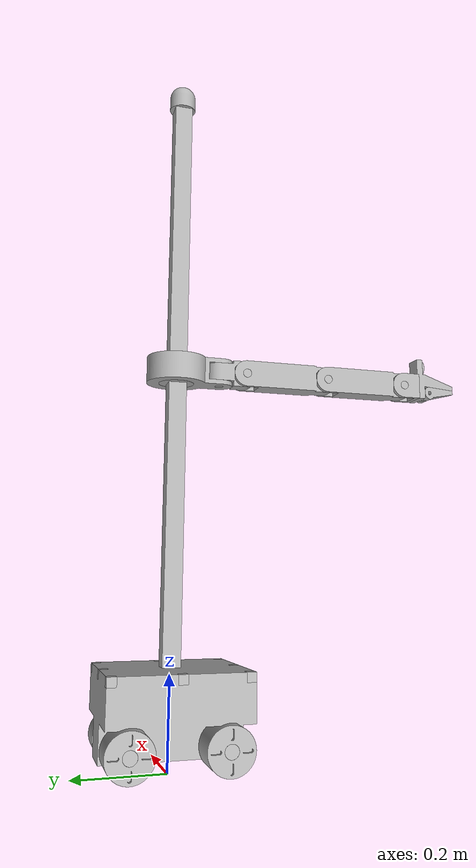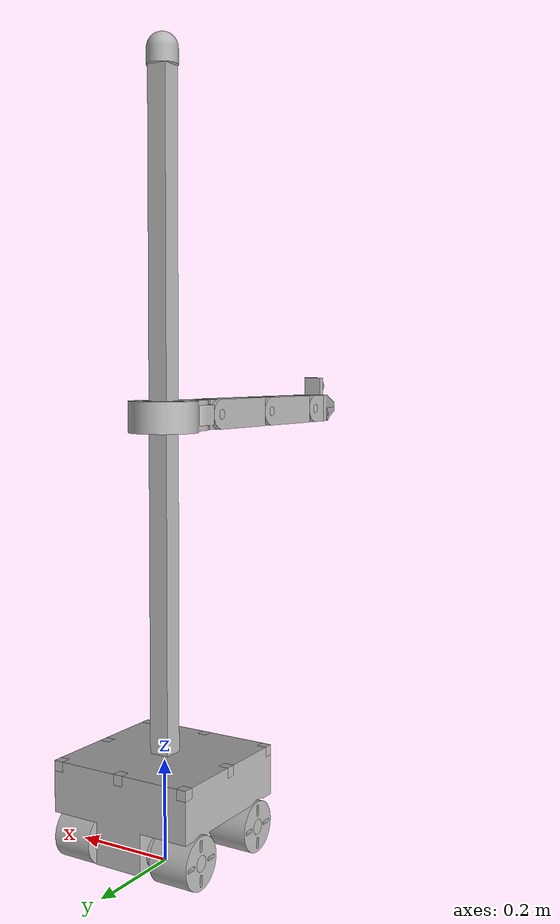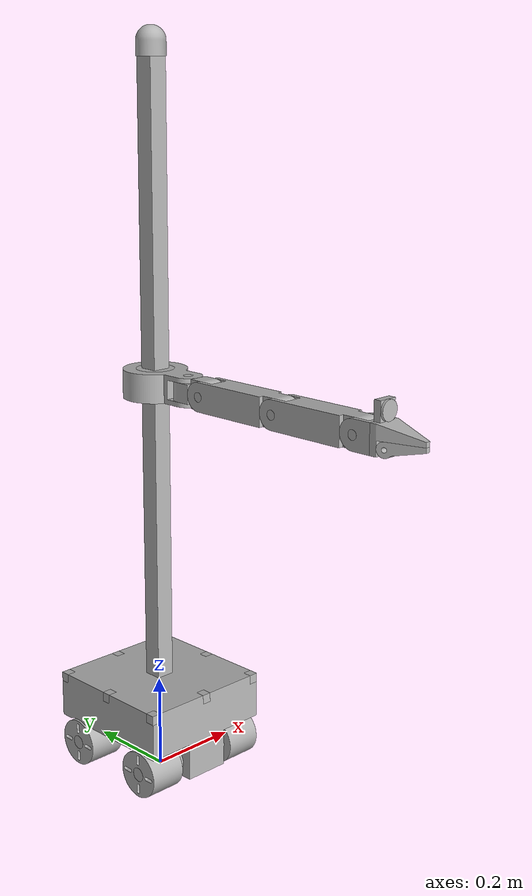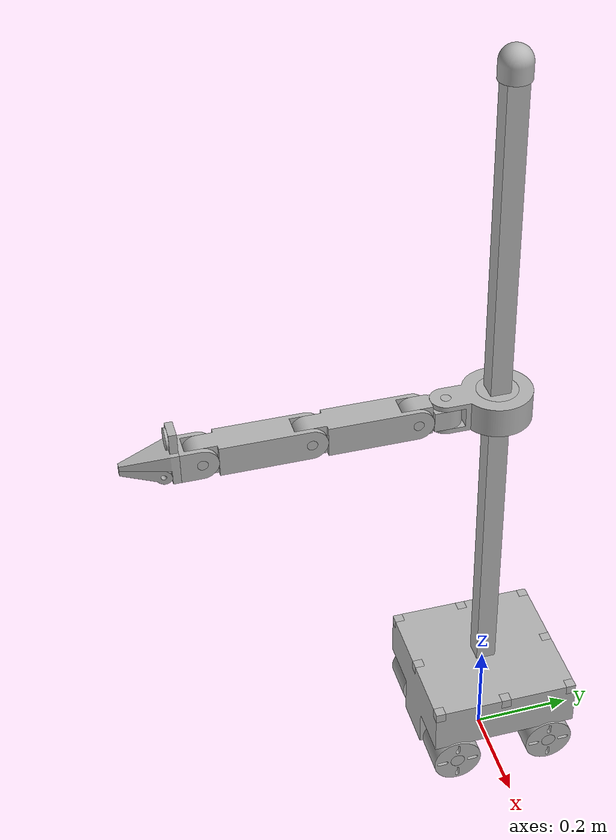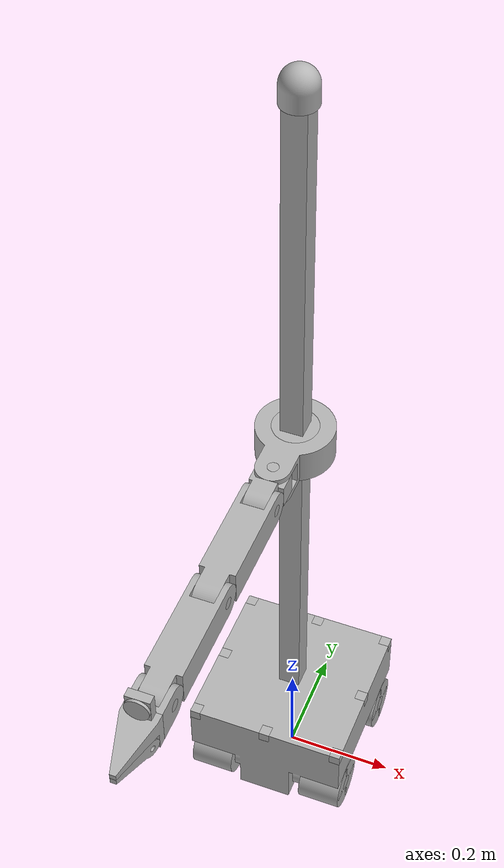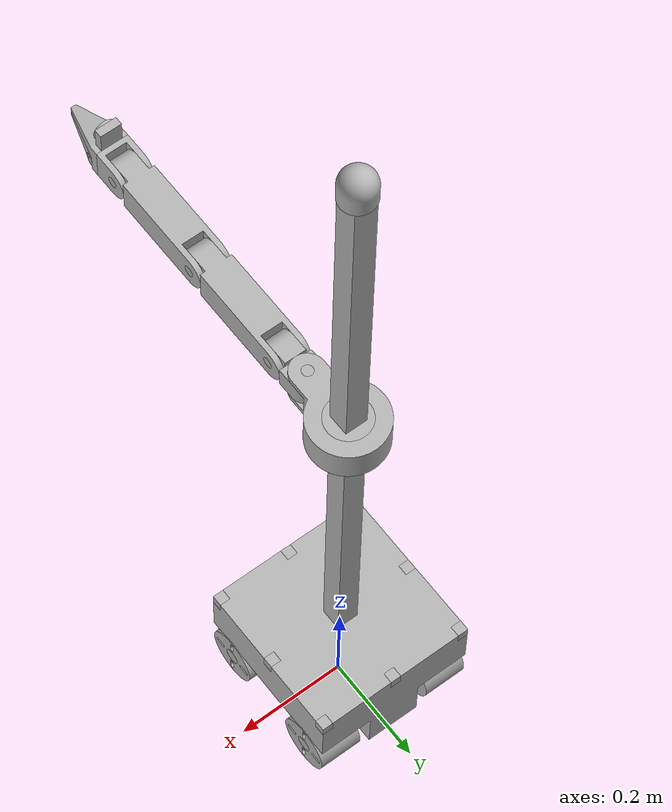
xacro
<?xml version="1.0" ?>
<robot name="robot_RAMI_v1_urdf" xmlns:xacro="http://www.ros.org/wiki/xacro">

<xacro:include filename="$(find robot_RAMI_v1_urdf_description)/urdf/materials.xacro" />
<xacro:include filename="$(find robot_RAMI_v1_urdf_description)/urdf/robot_RAMI_v1_urdf.trans" />
<xacro:include filename="$(find robot_RAMI_v1_urdf_description)/urdf/robot_RAMI_v1_urdf.gazebo" />
<link name="base_link">
  <inertial>
    <origin xyz="5.236735450237464e-45 1.6694389991095796e-16 0.14282359768738614" rpy="0 0 0"/>
    <mass value="91.99187597721883"/>
    <inertia ixx="0.904345" iyy="0.771264" izz="1.256699" ixy="0.0" iyz="-0.0" ixz="-0.0"/>
  </inertial>
  <visual>
    <origin xyz="0 0 0" rpy="0 0 0"/>
    <geometry>
      <mesh filename="file://$(find robot_RAMI_v1_urdf_description)/meshes/base_link.stl" scale="0.001 0.001 0.001"/>
    </geometry>
    <material name="silver"/>
  </visual>
  <collision>
    <origin xyz="0 0 0" rpy="0 0 0"/>
    <geometry>
      <mesh filename="file://$(find robot_RAMI_v1_urdf_description)/meshes/base_link.stl" scale="0.001 0.001 0.001"/>
    </geometry>
  </collision>
</link>

<link name="weel_left_front_1">
  <inertial>
    <origin xyz="-0.04042192720646226 -2.7755575615628914e-17 2.7755575615628914e-17" rpy="0 0 0"/>
    <mass value="4.434930062692104"/>
    <inertia ixx="0.006057" iyy="0.005355" izz="0.005355" ixy="-0.0" iyz="0.0" ixz="0.0"/>
  </inertial>
  <visual>
    <origin xyz="-0.15 0.1 -0.065" rpy="0 0 0"/>
    <geometry>
      <mesh filename="file://$(find robot_RAMI_v1_urdf_description)/meshes/weel_left_front_1.stl" scale="0.001 0.001 0.001"/>
    </geometry>
    <material name="silver"/>
  </visual>
  <collision>
    <origin xyz="-0.15 0.1 -0.065" rpy="0 0 0"/>
    <geometry>
      <mesh filename="file://$(find robot_RAMI_v1_urdf_description)/meshes/weel_left_front_1.stl" scale="0.001 0.001 0.001"/>
    </geometry>
  </collision>
</link>

<link name="weel_left_back_1">
  <inertial>
    <origin xyz="-0.04042192720646226 -4.163336342344337e-17 2.7755575615628914e-17" rpy="0 0 0"/>
    <mass value="4.434930062692104"/>
    <inertia ixx="0.006057" iyy="0.005355" izz="0.005355" ixy="0.0" iyz="0.0" ixz="0.0"/>
  </inertial>
  <visual>
    <origin xyz="-0.15 -0.1 -0.065" rpy="0 0 0"/>
    <geometry>
      <mesh filename="file://$(find robot_RAMI_v1_urdf_description)/meshes/weel_left_back_1.stl" scale="0.001 0.001 0.001"/>
    </geometry>
    <material name="silver"/>
  </visual>
  <collision>
    <origin xyz="-0.15 -0.1 -0.065" rpy="0 0 0"/>
    <geometry>
      <mesh filename="file://$(find robot_RAMI_v1_urdf_description)/meshes/weel_left_back_1.stl" scale="0.001 0.001 0.001"/>
    </geometry>
  </collision>
</link>

<link name="weel_right_front_1">
  <inertial>
    <origin xyz="0.04042192720646226 -2.7755575615628914e-17 -2.7755575615628914e-17" rpy="0 0 0"/>
    <mass value="4.434930062692104"/>
    <inertia ixx="0.006057" iyy="0.005355" izz="0.005355" ixy="0.0" iyz="-0.0" ixz="-0.0"/>
  </inertial>
  <visual>
    <origin xyz="0.15 0.1 -0.065" rpy="0 0 0"/>
    <geometry>
      <mesh filename="file://$(find robot_RAMI_v1_urdf_description)/meshes/weel_right_front_1.stl" scale="0.001 0.001 0.001"/>
    </geometry>
    <material name="silver"/>
  </visual>
  <collision>
    <origin xyz="0.15 0.1 -0.065" rpy="0 0 0"/>
    <geometry>
      <mesh filename="file://$(find robot_RAMI_v1_urdf_description)/meshes/weel_right_front_1.stl" scale="0.001 0.001 0.001"/>
    </geometry>
  </collision>
</link>

<link name="weel_right_back_1">
  <inertial>
    <origin xyz="0.04042192720646226 -4.163336342344337e-17 -2.7755575615628914e-17" rpy="0 0 0"/>
    <mass value="4.434930062692104"/>
    <inertia ixx="0.006057" iyy="0.005355" izz="0.005355" ixy="0.0" iyz="-0.0" ixz="-0.0"/>
  </inertial>
  <visual>
    <origin xyz="0.15 -0.1 -0.065" rpy="0 0 0"/>
    <geometry>
      <mesh filename="file://$(find robot_RAMI_v1_urdf_description)/meshes/weel_right_back_1.stl" scale="0.001 0.001 0.001"/>
    </geometry>
    <material name="silver"/>
  </visual>
  <collision>
    <origin xyz="0.15 -0.1 -0.065" rpy="0 0 0"/>
    <geometry>
      <mesh filename="file://$(find robot_RAMI_v1_urdf_description)/meshes/weel_right_back_1.stl" scale="0.001 0.001 0.001"/>
    </geometry>
  </collision>
</link>

<link name="pillar_link_1">
  <inertial>
    <origin xyz="0.0 0.0 0.65" rpy="0 0 0"/>
    <mass value="16.328"/>
    <inertia ixx="2.301704" iyy="2.301704" izz="0.004354" ixy="0.0" iyz="0.0" ixz="0.0"/>
  </inertial>
  <visual>
    <origin xyz="-0.0 -0.0 -0.215" rpy="0 0 0"/>
    <geometry>
      <mesh filename="file://$(find robot_RAMI_v1_urdf_description)/meshes/pillar_link_1.stl" scale="0.001 0.001 0.001"/>
    </geometry>
    <material name="silver"/>
  </visual>
  <collision>
    <origin xyz="-0.0 -0.0 -0.215" rpy="0 0 0"/>
    <geometry>
      <mesh filename="file://$(find robot_RAMI_v1_urdf_description)/meshes/pillar_link_1.stl" scale="0.001 0.001 0.001"/>
    </geometry>
  </collision>
</link>

<link name="lift_slide_link_1">
  <inertial>
    <origin xyz="0.0 0.019999999999999993 0.0" rpy="0 0 0"/>
    <mass value="1.6139042237452679"/>
    <inertia ixx="0.001331" iyy="0.001331" izz="0.001693" ixy="0.0" iyz="0.0" ixz="-0.0"/>
  </inertial>
  <visual>
    <origin xyz="-0.0 0.02 -0.865" rpy="0 0 0"/>
    <geometry>
      <mesh filename="file://$(find robot_RAMI_v1_urdf_description)/meshes/lift_slide_link_1.stl" scale="0.001 0.001 0.001"/>
    </geometry>
    <material name="silver"/>
  </visual>
  <collision>
    <origin xyz="-0.0 0.02 -0.865" rpy="0 0 0"/>
    <geometry>
      <mesh filename="file://$(find robot_RAMI_v1_urdf_description)/meshes/lift_slide_link_1.stl" scale="0.001 0.001 0.001"/>
    </geometry>
  </collision>
</link>

<link name="rotation_link_1">
  <inertial>
    <origin xyz="-3.8733921313667243e-17 -0.011034064491522291 -0.030000000000000027" rpy="0 0 0"/>
    <mass value="4.894030814575847"/>
    <inertia ixx="0.012634" iyy="0.008358" izz="0.017752" ixy="-0.0" iyz="-0.0" ixz="-0.0"/>
  </inertial>
  <visual>
    <origin xyz="-0.0 -0.0 -0.895" rpy="0 0 0"/>
    <geometry>
      <mesh filename="file://$(find robot_RAMI_v1_urdf_description)/meshes/rotation_link_1.stl" scale="0.001 0.001 0.001"/>
    </geometry>
    <material name="silver"/>
  </visual>
  <collision>
    <origin xyz="-0.0 -0.0 -0.895" rpy="0 0 0"/>
    <geometry>
      <mesh filename="file://$(find robot_RAMI_v1_urdf_description)/meshes/rotation_link_1.stl" scale="0.001 0.001 0.001"/>
    </geometry>
  </collision>
</link>

<link name="arm_link_1_1">
  <inertial>
    <origin xyz="-2.4373878592258097e-14 -0.02999999999997563 -0.030000000000000027" rpy="0 0 0"/>
    <mass value="2.116860093227199"/>
    <inertia ixx="0.002544" iyy="0.000873" izz="0.002544" ixy="0.0" iyz="-0.0" ixz="-0.0"/>
  </inertial>
  <visual>
    <origin xyz="0.0 0.1 -0.895" rpy="0 0 0"/>
    <geometry>
      <mesh filename="file://$(find robot_RAMI_v1_urdf_description)/meshes/arm_link_1_1.stl" scale="0.001 0.001 0.001"/>
    </geometry>
    <material name="silver"/>
  </visual>
  <collision>
    <origin xyz="0.0 0.1 -0.895" rpy="0 0 0"/>
    <geometry>
      <mesh filename="file://$(find robot_RAMI_v1_urdf_description)/meshes/arm_link_1_1.stl" scale="0.001 0.001 0.001"/>
    </geometry>
  </collision>
</link>

<link name="arm_link_2_1">
  <inertial>
    <origin xyz="0.029999999999991558 -0.11076897638558528 0.0" rpy="0 0 0"/>
    <mass value="5.4700605629283565"/>
    <inertia ixx="0.022112" iyy="0.003232" izz="0.022162" ixy="-0.0" iyz="0.0" ixz="0.0"/>
  </inertial>
  <visual>
    <origin xyz="0.03 0.16 -0.865" rpy="0 0 0"/>
    <geometry>
      <mesh filename="file://$(find robot_RAMI_v1_urdf_description)/meshes/arm_link_2_1.stl" scale="0.001 0.001 0.001"/>
    </geometry>
    <material name="silver"/>
  </visual>
  <collision>
    <origin xyz="0.03 0.16 -0.865" rpy="0 0 0"/>
    <geometry>
      <mesh filename="file://$(find robot_RAMI_v1_urdf_description)/meshes/arm_link_2_1.stl" scale="0.001 0.001 0.001"/>
    </geometry>
  </collision>
</link>

<link name="arm_link_3_1">
  <inertial>
    <origin xyz="0.029999999999989233 -0.11076897638558181 0.0" rpy="0 0 0"/>
    <mass value="5.4700605629283565"/>
    <inertia ixx="0.022112" iyy="0.003232" izz="0.022162" ixy="0.0" iyz="0.0" ixz="0.0"/>
  </inertial>
  <visual>
    <origin xyz="0.03 0.36 -0.865" rpy="0 0 0"/>
    <geometry>
      <mesh filename="file://$(find robot_RAMI_v1_urdf_description)/meshes/arm_link_3_1.stl" scale="0.001 0.001 0.001"/>
    </geometry>
    <material name="silver"/>
  </visual>
  <collision>
    <origin xyz="0.03 0.36 -0.865" rpy="0 0 0"/>
    <geometry>
      <mesh filename="file://$(find robot_RAMI_v1_urdf_description)/meshes/arm_link_3_1.stl" scale="0.001 0.001 0.001"/>
    </geometry>
  </collision>
</link>

<link name="arm_link_4_1">
  <inertial>
    <origin xyz="0.03000000000001029 -0.016280521371105028 -1.1102230246251565e-16" rpy="0 0 0"/>
    <mass value="0.7624920186454387"/>
    <inertia ixx="0.000549" iyy="0.000593" izz="0.000704" ixy="-0.0" iyz="0.0" ixz="-0.0"/>
  </inertial>
  <visual>
    <origin xyz="0.03 0.56 -0.865" rpy="0 0 0"/>
    <geometry>
      <mesh filename="file://$(find robot_RAMI_v1_urdf_description)/meshes/arm_link_4_1.stl" scale="0.001 0.001 0.001"/>
    </geometry>
    <material name="silver"/>
  </visual>
  <collision>
    <origin xyz="0.03 0.56 -0.865" rpy="0 0 0"/>
    <geometry>
      <mesh filename="file://$(find robot_RAMI_v1_urdf_description)/meshes/arm_link_4_1.stl" scale="0.001 0.001 0.001"/>
    </geometry>
  </collision>
</link>

<link name="arm_link_5_1">
  <inertial>
    <origin xyz="-5.74651437545981e-15 -0.0252806308785557 0.012605993191931009" rpy="0 0 0"/>
    <mass value="1.1979673122086651"/>
    <inertia ixx="0.001203" iyy="0.000805" izz="0.000895" ixy="0.0" iyz="-7.8e-05" ixz="-0.0"/>
  </inertial>
  <visual>
    <origin xyz="0.0 0.6 -0.865" rpy="0 0 0"/>
    <geometry>
      <mesh filename="file://$(find robot_RAMI_v1_urdf_description)/meshes/arm_link_5_1.stl" scale="0.001 0.001 0.001"/>
    </geometry>
    <material name="silver"/>
  </visual>
  <collision>
    <origin xyz="0.0 0.6 -0.865" rpy="0 0 0"/>
    <geometry>
      <mesh filename="file://$(find robot_RAMI_v1_urdf_description)/meshes/arm_link_5_1.stl" scale="0.001 0.001 0.001"/>
    </geometry>
  </collision>
</link>

<link name="arm_link_6_1">
  <inertial>
    <origin xyz="0.004999999999994271 -0.018028241297897152 0.0031645487862005384" rpy="0 0 0"/>
    <mass value="0.44764954347217284"/>
    <inertia ixx="0.000233" iyy="0.000106" izz="0.000289" ixy="-0.0" iyz="2.7e-05" ixz="-0.0"/>
  </inertial>
  <visual>
    <origin xyz="0.005 0.63 -0.85" rpy="0 0 0"/>
    <geometry>
      <mesh filename="file://$(find robot_RAMI_v1_urdf_description)/meshes/arm_link_6_1.stl" scale="0.001 0.001 0.001"/>
    </geometry>
    <material name="silver"/>
  </visual>
  <collision>
    <origin xyz="0.005 0.63 -0.85" rpy="0 0 0"/>
    <geometry>
      <mesh filename="file://$(find robot_RAMI_v1_urdf_description)/meshes/arm_link_6_1.stl" scale="0.001 0.001 0.001"/>
    </geometry>
  </collision>
</link>

<link name="depth_camera_1">
  <inertial>
    <origin xyz="-9.650038500203379e-17 -8.041698750169481e-18 0.025499999999999856" rpy="0 0 0"/>
    <mass value="1.1097676048805947"/>
    <inertia ixx="0.000487" iyy="0.000487" izz="0.000459" ixy="0.0" iyz="-0.0" ixz="0.0"/>
  </inertial>
  <visual>
    <origin xyz="-0.0 -0.0 -1.515" rpy="0 0 0"/>
    <geometry>
      <mesh filename="file://$(find robot_RAMI_v1_urdf_description)/meshes/depth_camera_1.stl" scale="0.001 0.001 0.001"/>
    </geometry>
    <material name="silver"/>
  </visual>
  <collision>
    <origin xyz="-0.0 -0.0 -1.515" rpy="0 0 0"/>
    <geometry>
      <mesh filename="file://$(find robot_RAMI_v1_urdf_description)/meshes/depth_camera_1.stl" scale="0.001 0.001 0.001"/>
    </geometry>
  </collision>
</link>

<link name="gripper_camera_1">
  <inertial>
    <origin xyz="-5.71704186315195e-15 -0.0024999999999992806 5.551115123125783e-16" rpy="0 0 0"/>
    <mass value="0.049323004661359734"/>
    <inertia ixx="5e-06" iyy="1e-05" izz="5e-06" ixy="0.0" iyz="0.0" ixz="-0.0"/>
  </inertial>
  <visual>
    <origin xyz="0.0 0.615 -0.915" rpy="0 0 0"/>
    <geometry>
      <mesh filename="file://$(find robot_RAMI_v1_urdf_description)/meshes/gripper_camera_1.stl" scale="0.001 0.001 0.001"/>
    </geometry>
    <material name="silver"/>
  </visual>
  <collision>
    <origin xyz="0.0 0.615 -0.915" rpy="0 0 0"/>
    <geometry>
      <mesh filename="file://$(find robot_RAMI_v1_urdf_description)/meshes/gripper_camera_1.stl" scale="0.001 0.001 0.001"/>
    </geometry>
  </collision>
</link>

<link name="ultrasonic_sensor_1_1">
  <inertial>
    <origin xyz="5.551115123125783e-17 0.0 0.009999999999999981" rpy="0 0 0"/>
    <mass value="0.0628"/>
    <inertia ixx="4e-06" iyy="4e-06" izz="4e-06" ixy="0.0" iyz="0.0" ixz="-0.0"/>
  </inertial>
  <visual>
    <origin xyz="-0.14 0.14 -0.195" rpy="0 0 0"/>
    <geometry>
      <mesh filename="file://$(find robot_RAMI_v1_urdf_description)/meshes/ultrasonic_sensor_1_1.stl" scale="0.001 0.001 0.001"/>
    </geometry>
    <material name="silver"/>
  </visual>
  <collision>
    <origin xyz="-0.14 0.14 -0.195" rpy="0 0 0"/>
    <geometry>
      <mesh filename="file://$(find robot_RAMI_v1_urdf_description)/meshes/ultrasonic_sensor_1_1.stl" scale="0.001 0.001 0.001"/>
    </geometry>
  </collision>
</link>

<link name="ultrasonic_sensor_2_1">
  <inertial>
    <origin xyz="0.0 0.0 0.009999999999999981" rpy="0 0 0"/>
    <mass value="0.0628"/>
    <inertia ixx="4e-06" iyy="4e-06" izz="4e-06" ixy="0.0" iyz="0.0" ixz="0.0"/>
  </inertial>
  <visual>
    <origin xyz="-0.0 0.14 -0.195" rpy="0 0 0"/>
    <geometry>
      <mesh filename="file://$(find robot_RAMI_v1_urdf_description)/meshes/ultrasonic_sensor_2_1.stl" scale="0.001 0.001 0.001"/>
    </geometry>
    <material name="silver"/>
  </visual>
  <collision>
    <origin xyz="-0.0 0.14 -0.195" rpy="0 0 0"/>
    <geometry>
      <mesh filename="file://$(find robot_RAMI_v1_urdf_description)/meshes/ultrasonic_sensor_2_1.stl" scale="0.001 0.001 0.001"/>
    </geometry>
  </collision>
</link>

<link name="ultrasonic_sensor_3_1">
  <inertial>
    <origin xyz="0.0 0.0 0.009999999999999981" rpy="0 0 0"/>
    <mass value="0.0628"/>
    <inertia ixx="4e-06" iyy="4e-06" izz="4e-06" ixy="0.0" iyz="0.0" ixz="0.0"/>
  </inertial>
  <visual>
    <origin xyz="0.14 0.14 -0.195" rpy="0 0 0"/>
    <geometry>
      <mesh filename="file://$(find robot_RAMI_v1_urdf_description)/meshes/ultrasonic_sensor_3_1.stl" scale="0.001 0.001 0.001"/>
    </geometry>
    <material name="silver"/>
  </visual>
  <collision>
    <origin xyz="0.14 0.14 -0.195" rpy="0 0 0"/>
    <geometry>
      <mesh filename="file://$(find robot_RAMI_v1_urdf_description)/meshes/ultrasonic_sensor_3_1.stl" scale="0.001 0.001 0.001"/>
    </geometry>
  </collision>
</link>

<link name="ultrasonic_sensor_4_1">
  <inertial>
    <origin xyz="0.0 3.3306690738754695e-17 0.009999999999999981" rpy="0 0 0"/>
    <mass value="0.0628"/>
    <inertia ixx="4e-06" iyy="4e-06" izz="4e-06" ixy="-0.0" iyz="-0.0" ixz="0.0"/>
  </inertial>
  <visual>
    <origin xyz="0.14 -0.0 -0.195" rpy="0 0 0"/>
    <geometry>
      <mesh filename="file://$(find robot_RAMI_v1_urdf_description)/meshes/ultrasonic_sensor_4_1.stl" scale="0.001 0.001 0.001"/>
    </geometry>
    <material name="silver"/>
  </visual>
  <collision>
    <origin xyz="0.14 -0.0 -0.195" rpy="0 0 0"/>
    <geometry>
      <mesh filename="file://$(find robot_RAMI_v1_urdf_description)/meshes/ultrasonic_sensor_4_1.stl" scale="0.001 0.001 0.001"/>
    </geometry>
  </collision>
</link>

<link name="ultrasonic_sensor_5_1">
  <inertial>
    <origin xyz="2.7755575615628914e-17 2.7755575615628914e-17 0.009999999999999981" rpy="0 0 0"/>
    <mass value="0.0628"/>
    <inertia ixx="4e-06" iyy="4e-06" izz="4e-06" ixy="0.0" iyz="0.0" ixz="-0.0"/>
  </inertial>
  <visual>
    <origin xyz="0.14 -0.14 -0.195" rpy="0 0 0"/>
    <geometry>
      <mesh filename="file://$(find robot_RAMI_v1_urdf_description)/meshes/ultrasonic_sensor_5_1.stl" scale="0.001 0.001 0.001"/>
    </geometry>
    <material name="silver"/>
  </visual>
  <collision>
    <origin xyz="0.14 -0.14 -0.195" rpy="0 0 0"/>
    <geometry>
      <mesh filename="file://$(find robot_RAMI_v1_urdf_description)/meshes/ultrasonic_sensor_5_1.stl" scale="0.001 0.001 0.001"/>
    </geometry>
  </collision>
</link>

<link name="ultrasonic_sensor_6_1">
  <inertial>
    <origin xyz="1.5543122344752193e-17 0.0 0.009999999999999981" rpy="0 0 0"/>
    <mass value="0.0628"/>
    <inertia ixx="4e-06" iyy="4e-06" izz="4e-06" ixy="0.0" iyz="0.0" ixz="0.0"/>
  </inertial>
  <visual>
    <origin xyz="-0.0 -0.14 -0.195" rpy="0 0 0"/>
    <geometry>
      <mesh filename="file://$(find robot_RAMI_v1_urdf_description)/meshes/ultrasonic_sensor_6_1.stl" scale="0.001 0.001 0.001"/>
    </geometry>
    <material name="silver"/>
  </visual>
  <collision>
    <origin xyz="-0.0 -0.14 -0.195" rpy="0 0 0"/>
    <geometry>
      <mesh filename="file://$(find robot_RAMI_v1_urdf_description)/meshes/ultrasonic_sensor_6_1.stl" scale="0.001 0.001 0.001"/>
    </geometry>
  </collision>
</link>

<link name="ultrasonic_sensor_7_1">
  <inertial>
    <origin xyz="0.0 0.0 0.009999999999999981" rpy="0 0 0"/>
    <mass value="0.0628"/>
    <inertia ixx="4e-06" iyy="4e-06" izz="4e-06" ixy="0.0" iyz="0.0" ixz="-0.0"/>
  </inertial>
  <visual>
    <origin xyz="-0.14 -0.14 -0.195" rpy="0 0 0"/>
    <geometry>
      <mesh filename="file://$(find robot_RAMI_v1_urdf_description)/meshes/ultrasonic_sensor_7_1.stl" scale="0.001 0.001 0.001"/>
    </geometry>
    <material name="silver"/>
  </visual>
  <collision>
    <origin xyz="-0.14 -0.14 -0.195" rpy="0 0 0"/>
    <geometry>
      <mesh filename="file://$(find robot_RAMI_v1_urdf_description)/meshes/ultrasonic_sensor_7_1.stl" scale="0.001 0.001 0.001"/>
    </geometry>
  </collision>
</link>

<link name="ultrasonic_sensor_8_1">
  <inertial>
    <origin xyz="2.7755575615628914e-17 3.1086244689504386e-17 0.009999999999999981" rpy="0 0 0"/>
    <mass value="0.0628"/>
    <inertia ixx="4e-06" iyy="4e-06" izz="4e-06" ixy="-0.0" iyz="0.0" ixz="0.0"/>
  </inertial>
  <visual>
    <origin xyz="-0.14 -0.0 -0.195" rpy="0 0 0"/>
    <geometry>
      <mesh filename="file://$(find robot_RAMI_v1_urdf_description)/meshes/ultrasonic_sensor_8_1.stl" scale="0.001 0.001 0.001"/>
    </geometry>
    <material name="silver"/>
  </visual>
  <collision>
    <origin xyz="-0.14 -0.0 -0.195" rpy="0 0 0"/>
    <geometry>
      <mesh filename="file://$(find robot_RAMI_v1_urdf_description)/meshes/ultrasonic_sensor_8_1.stl" scale="0.001 0.001 0.001"/>
    </geometry>
  </collision>
</link>

<link name="imu_sensor_1">
  <inertial>
    <origin xyz="0.0 0.0 -0.010000000000000002" rpy="0 0 0"/>
    <mass value="0.0628"/>
    <inertia ixx="4e-06" iyy="4e-06" izz="4e-06" ixy="0.0" iyz="0.0" ixz="0.0"/>
  </inertial>
  <visual>
    <origin xyz="-0.0 -0.0 -0.055" rpy="0 0 0"/>
    <geometry>
      <mesh filename="file://$(find robot_RAMI_v1_urdf_description)/meshes/imu_sensor_1.stl" scale="0.001 0.001 0.001"/>
    </geometry>
    <material name="silver"/>
  </visual>
  <collision>
    <origin xyz="-0.0 -0.0 -0.055" rpy="0 0 0"/>
    <geometry>
      <mesh filename="file://$(find robot_RAMI_v1_urdf_description)/meshes/imu_sensor_1.stl" scale="0.001 0.001 0.001"/>
    </geometry>
  </collision>
</link>

<joint name="weel_LF_joint" type="continuous">
  <origin xyz="0.15 -0.1 0.065" rpy="0 0 0"/>
  <parent link="base_link"/>
  <child link="weel_left_front_1"/>
  <axis xyz="1.0 0.0 0.0"/>
</joint>

<joint name="weel_LB_joint" type="continuous">
  <origin xyz="0.15 0.1 0.065" rpy="0 0 0"/>
  <parent link="base_link"/>
  <child link="weel_left_back_1"/>
  <axis xyz="1.0 0.0 0.0"/>
</joint>

<joint name="weel_RF_joint" type="continuous">
  <origin xyz="-0.15 -0.1 0.065" rpy="0 0 0"/>
  <parent link="base_link"/>
  <child link="weel_right_front_1"/>
  <axis xyz="-1.0 -0.0 -0.0"/>
</joint>

<joint name="weel_RB_joint" type="continuous">
  <origin xyz="-0.15 0.1 0.065" rpy="0 0 0"/>
  <parent link="base_link"/>
  <child link="weel_right_back_1"/>
  <axis xyz="-1.0 -0.0 -0.0"/>
</joint>

<joint name="pillar_joint" type="fixed">
  <origin xyz="0.0 0.0 0.215" rpy="0 0 0"/>
  <parent link="base_link"/>
  <child link="pillar_link_1"/>
</joint>

<joint name="lift_slide_joint" type="prismatic">
  <origin xyz="0.0 -0.02 0.65" rpy="0 0 0"/>
  <parent link="pillar_link_1"/>
  <child link="lift_slide_link_1"/>
  <axis xyz="0.0 0.0 1.0"/>
  <limit upper="0.62" lower="-0.62" effort="100" velocity="100"/>
</joint>

<joint name="rotation_joint" type="revolute">
  <origin xyz="0.0 0.02 0.03" rpy="0 0 0"/>
  <parent link="lift_slide_link_1"/>
  <child link="rotation_link_1"/>
  <axis xyz="0.0 0.0 1.0"/>
  <limit upper="3.141593" lower="-3.141593" effort="100" velocity="100"/>
</joint>

<joint name="arm_joint_1" type="revolute">
  <origin xyz="-0.0 -0.1 0.0" rpy="0 0 0"/>
  <parent link="rotation_link_1"/>
  <child link="arm_link_1_1"/>
  <axis xyz="-0.0 0.0 -1.0"/>
  <limit upper="1.570796" lower="-1.570796" effort="100" velocity="100"/>
</joint>

<joint name="arm_joint_2" type="revolute">
  <origin xyz="-0.03 -0.06 -0.03" rpy="0 0 0"/>
  <parent link="arm_link_1_1"/>
  <child link="arm_link_2_1"/>
  <axis xyz="-1.0 -0.0 0.0"/>
  <limit upper="1.570796" lower="-1.570796" effort="100" velocity="100"/>
</joint>

<joint name="arm_joint_3" type="revolute">
  <origin xyz="0.0 -0.2 0.0" rpy="0 0 0"/>
  <parent link="arm_link_2_1"/>
  <child link="arm_link_3_1"/>
  <axis xyz="-1.0 0.0 0.0"/>
  <limit upper="1.570796" lower="-1.570796" effort="100" velocity="100"/>
</joint>

<joint name="arm_joint_4" type="revolute">
  <origin xyz="0.0 -0.2 0.0" rpy="0 0 0"/>
  <parent link="arm_link_3_1"/>
  <child link="arm_link_4_1"/>
  <axis xyz="-1.0 -0.0 -0.0"/>
  <limit upper="1.570796" lower="-1.570796" effort="100" velocity="100"/>
</joint>

<joint name="arm_joint_5" type="revolute">
  <origin xyz="0.03 -0.04 0.0" rpy="0 0 0"/>
  <parent link="arm_link_4_1"/>
  <child link="arm_link_5_1"/>
  <axis xyz="-0.0 1.0 0.0"/>
  <limit upper="3.141593" lower="-3.141593" effort="100" velocity="100"/>
</joint>

<joint name="arm_joint_6" type="revolute">
  <origin xyz="-0.005 -0.03 -0.015" rpy="0 0 0"/>
  <parent link="arm_link_5_1"/>
  <child link="arm_link_6_1"/>
  <axis xyz="1.0 0.0 0.0"/>
  <limit upper="1.570796" lower="0.0" effort="100" velocity="100"/>
</joint>

<joint name="depth_camera_joint" type="fixed">
  <origin xyz="0.0 0.0 1.3" rpy="0 0 0"/>
  <parent link="pillar_link_1"/>
  <child link="depth_camera_1"/>
</joint>

<joint name="gripper_camera_joint" type="fixed">
  <origin xyz="0.0 -0.015 0.05" rpy="0 0 0"/>
  <parent link="arm_link_5_1"/>
  <child link="gripper_camera_1"/>
</joint>

<joint name="ultrasonic_sensor_joint_1" type="fixed">
  <origin xyz="0.14 -0.14 0.195" rpy="0 0 0"/>
  <parent link="base_link"/>
  <child link="ultrasonic_sensor_1_1"/>
</joint>

<joint name="ultrasonic_sensor_joint_2" type="fixed">
  <origin xyz="0.0 -0.14 0.195" rpy="0 0 0"/>
  <parent link="base_link"/>
  <child link="ultrasonic_sensor_2_1"/>
</joint>

<joint name="ultrasonic_sensor_joint_3" type="fixed">
  <origin xyz="-0.14 -0.14 0.195" rpy="0 0 0"/>
  <parent link="base_link"/>
  <child link="ultrasonic_sensor_3_1"/>
</joint>

<joint name="ultrasonic_sensor_joint_4" type="fixed">
  <origin xyz="-0.14 0.0 0.195" rpy="0 0 0"/>
  <parent link="base_link"/>
  <child link="ultrasonic_sensor_4_1"/>
</joint>

<joint name="ultrasonic_sensor_joint_5" type="fixed">
  <origin xyz="-0.14 0.14 0.195" rpy="0 0 0"/>
  <parent link="base_link"/>
  <child link="ultrasonic_sensor_5_1"/>
</joint>

<joint name="ultrasonic_sensor_joint_6" type="fixed">
  <origin xyz="0.0 0.14 0.195" rpy="0 0 0"/>
  <parent link="base_link"/>
  <child link="ultrasonic_sensor_6_1"/>
</joint>

<joint name="ultrasonic_sensor_joint_7" type="fixed">
  <origin xyz="0.14 0.14 0.195" rpy="0 0 0"/>
  <parent link="base_link"/>
  <child link="ultrasonic_sensor_7_1"/>
</joint>

<joint name="ultrasonic_sensor_joint_8" type="fixed">
  <origin xyz="0.14 0.0 0.195" rpy="0 0 0"/>
  <parent link="base_link"/>
  <child link="ultrasonic_sensor_8_1"/>
</joint>

<joint name="imu_sensor_joint" type="fixed">
  <origin xyz="0.0 0.0 0.055" rpy="0 0 0"/>
  <parent link="base_link"/>
  <child link="imu_sensor_1"/>
</joint>

</robot>

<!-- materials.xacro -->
<robot name="robot_RAMI_v1_urdf" xmlns:xacro="http://www.ros.org/wiki/xacro" >

<material name="silver">
  <color rgba="0.700 0.700 0.700 1.000"/>
</material>

</robot>

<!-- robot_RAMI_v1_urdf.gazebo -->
<robot name="robot_RAMI_v1_urdf" xmlns:xacro="http://www.ros.org/wiki/xacro" >

<xacro:property name="body_color" value="Gazebo/Silver" />

<gazebo>
  <plugin name="control" filename="libgazebo_ros_control.so"/>
</gazebo>
<gazebo reference="base_link">
  <material>${body_color}</material>
  <mu1>0.2</mu1>
  <mu2>0.2</mu2>
  <self_collide>true</self_collide>
  <gravity>true</gravity>
</gazebo>

<gazebo reference="weel_left_front_1">
  <material>${body_color}</material>
  <mu1>0.2</mu1>
  <mu2>0.2</mu2>
  <self_collide>true</self_collide>
</gazebo>

<gazebo reference="weel_left_back_1">
  <material>${body_color}</material>
  <mu1>0.2</mu1>
  <mu2>0.2</mu2>
  <self_collide>true</self_collide>
</gazebo>

<gazebo reference="weel_right_front_1">
  <material>${body_color}</material>
  <mu1>0.2</mu1>
  <mu2>0.2</mu2>
  <self_collide>true</self_collide>
</gazebo>

<gazebo reference="weel_right_back_1">
  <material>${body_color}</material>
  <mu1>0.2</mu1>
  <mu2>0.2</mu2>
  <self_collide>true</self_collide>
</gazebo>

<gazebo reference="pillar_link_1">
  <material>${body_color}</material>
  <mu1>0.2</mu1>
  <mu2>0.2</mu2>
  <self_collide>true</self_collide>
</gazebo>

<gazebo reference="lift_slide_link_1">
  <material>${body_color}</material>
  <mu1>0.2</mu1>
  <mu2>0.2</mu2>
  <self_collide>true</self_collide>
</gazebo>

<gazebo reference="rotation_link_1">
  <material>${body_color}</material>
  <mu1>0.2</mu1>
  <mu2>0.2</mu2>
  <self_collide>true</self_collide>
</gazebo>

<gazebo reference="arm_link_1_1">
  <material>${body_color}</material>
  <mu1>0.2</mu1>
  <mu2>0.2</mu2>
  <self_collide>true</self_collide>
</gazebo>

<gazebo reference="arm_link_2_1">
  <material>${body_color}</material>
  <mu1>0.2</mu1>
  <mu2>0.2</mu2>
  <self_collide>true</self_collide>
</gazebo>

<gazebo reference="arm_link_3_1">
  <material>${body_color}</material>
  <mu1>0.2</mu1>
  <mu2>0.2</mu2>
  <self_collide>true</self_collide>
</gazebo>

<gazebo reference="arm_link_4_1">
  <material>${body_color}</material>
  <mu1>0.2</mu1>
  <mu2>0.2</mu2>
  <self_collide>true</self_collide>
</gazebo>

<gazebo reference="arm_link_5_1">
  <material>${body_color}</material>
  <mu1>0.2</mu1>
  <mu2>0.2</mu2>
  <self_collide>true</self_collide>
</gazebo>

<gazebo reference="arm_link_6_1">
  <material>${body_color}</material>
  <mu1>0.2</mu1>
  <mu2>0.2</mu2>
  <self_collide>true</self_collide>
</gazebo>

<gazebo reference="depth_camera_1">
  <material>${body_color}</material>
  <mu1>0.2</mu1>
  <mu2>0.2</mu2>
  <self_collide>true</self_collide>
</gazebo>

<gazebo reference="gripper_camera_1">
  <material>${body_color}</material>
  <mu1>0.2</mu1>
  <mu2>0.2</mu2>
  <self_collide>true</self_collide>
</gazebo>

<gazebo reference="ultrasonic_sensor_1_1">
  <material>${body_color}</material>
  <mu1>0.2</mu1>
  <mu2>0.2</mu2>
  <self_collide>true</self_collide>
</gazebo>

<gazebo reference="ultrasonic_sensor_2_1">
  <material>${body_color}</material>
  <mu1>0.2</mu1>
  <mu2>0.2</mu2>
  <self_collide>true</self_collide>
</gazebo>

<gazebo reference="ultrasonic_sensor_3_1">
  <material>${body_color}</material>
  <mu1>0.2</mu1>
  <mu2>0.2</mu2>
  <self_collide>true</self_collide>
</gazebo>

<gazebo reference="ultrasonic_sensor_4_1">
  <material>${body_color}</material>
  <mu1>0.2</mu1>
  <mu2>0.2</mu2>
  <self_collide>true</self_collide>
</gazebo>

<gazebo reference="ultrasonic_sensor_5_1">
  <material>${body_color}</material>
  <mu1>0.2</mu1>
  <mu2>0.2</mu2>
  <self_collide>true</self_collide>
</gazebo>

<gazebo reference="ultrasonic_sensor_6_1">
  <material>${body_color}</material>
  <mu1>0.2</mu1>
  <mu2>0.2</mu2>
  <self_collide>true</self_collide>
</gazebo>

<gazebo reference="ultrasonic_sensor_7_1">
  <material>${body_color}</material>
  <mu1>0.2</mu1>
  <mu2>0.2</mu2>
  <self_collide>true</self_collide>
</gazebo>

<gazebo reference="ultrasonic_sensor_8_1">
  <material>${body_color}</material>
  <mu1>0.2</mu1>
  <mu2>0.2</mu2>
  <self_collide>true</self_collide>
</gazebo>

<gazebo reference="imu_sensor_1">
  <material>${body_color}</material>
  <mu1>0.2</mu1>
  <mu2>0.2</mu2>
  <self_collide>true</self_collide>
</gazebo>

</robot>
